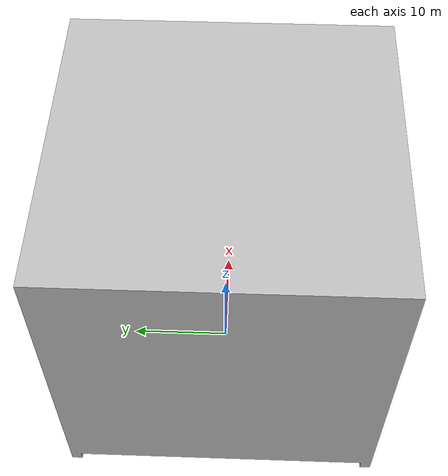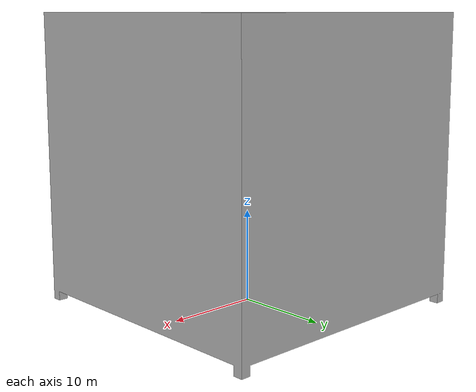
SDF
<?xml version="1.0" ?>
<sdf version="1.5">
  <model name="tower1">
    <link name="link">
      <collision name="collision">
        <geometry>
          <mesh>
            <uri>model://tower1/meshes/tower1.dae</uri>
          </mesh>
        </geometry>
      </collision>
      <visual name="visual">
        <geometry>
          <mesh>
            <uri>model://tower1/meshes/tower1.dae</uri>
          </mesh>
        </geometry>
      </visual>
    </link>
  </model>
</sdf>
